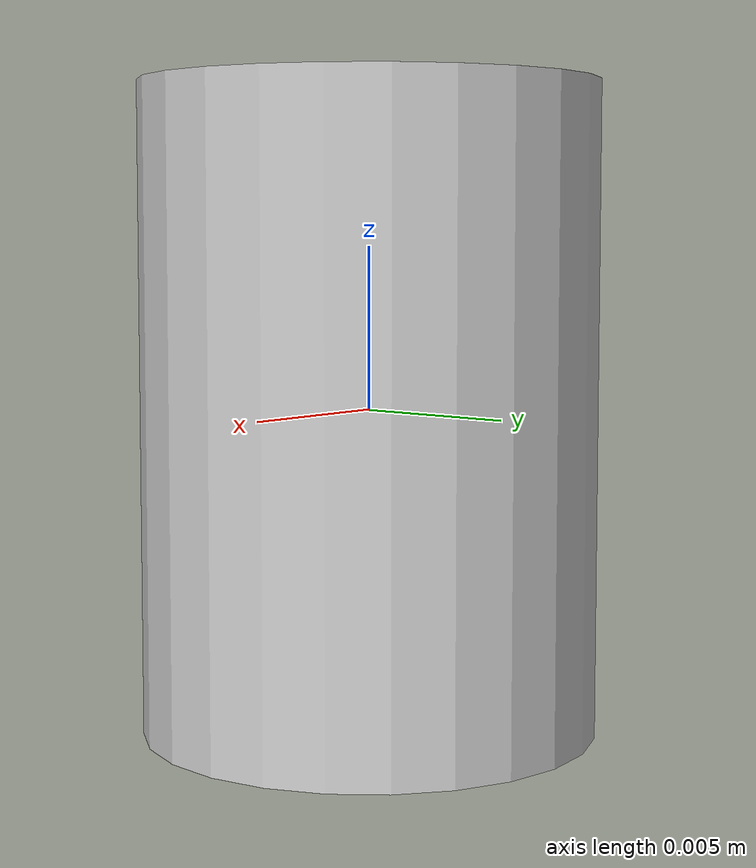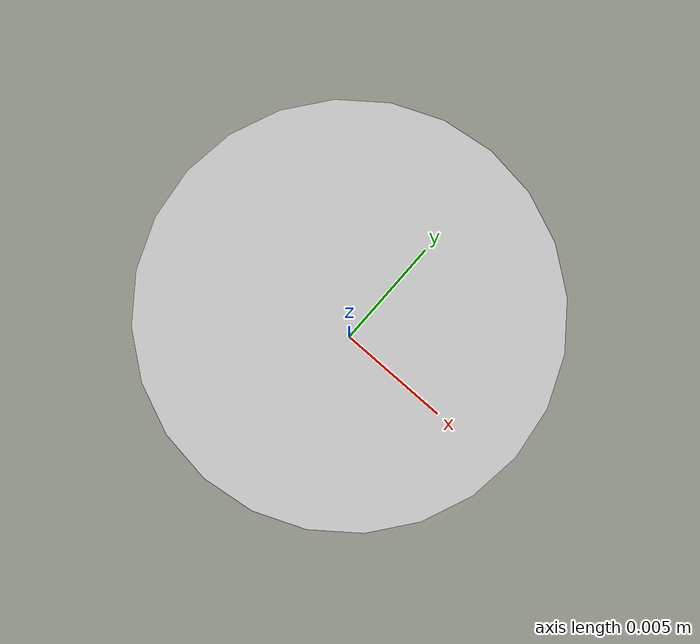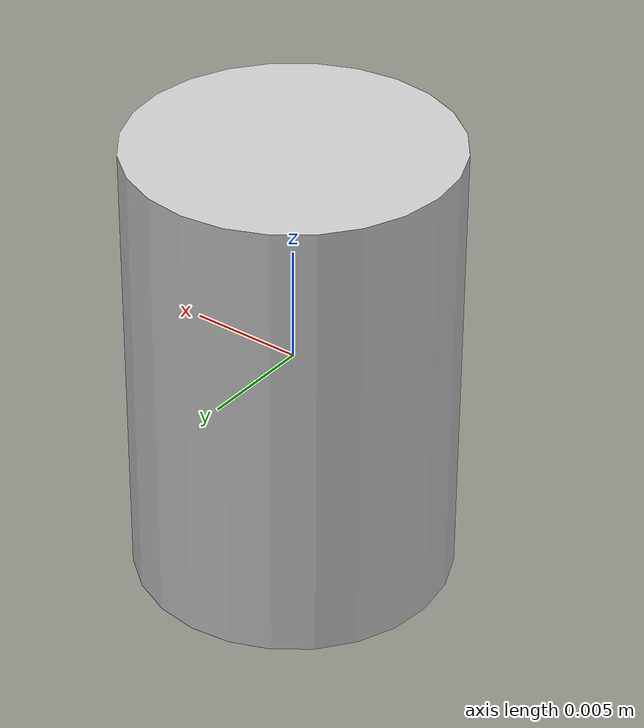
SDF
<?xml version="1.0"?>
<sdf version='1.6'>
<model name='USS'>
  <allow_auto_disable>1</allow_auto_disable>
  <link name='link_sonar'>
    <self_collide>0</self_collide>
    <enable_wind>0</enable_wind>
    <kinematic>0</kinematic>

    <inertial>
      <mass>0.020</mass>
      <inertia>
        <ixx>0.0</ixx>
        <ixy>0</ixy>
        <ixz>0</ixz>
        <iyy>0.0</iyy>
        <iyz>0</iyz>
        <izz>0.0</izz>
      </inertia>
    </inertial>

    <visual name='visual_sonar'>
      <geometry>
        <cylinder>
          <radius>0.007</radius>
          <length>0.02</length>
        </cylinder>
      </geometry>
      <material>
        <lighting>1</lighting>
        <ambient>0.89 0.89 0.89 1</ambient>
        <diffuse>0.8 0.8 0.8 1</diffuse>
        <specular>0.2 0.2 0.2 1</specular>
        <emissive>0.1 0.1 0.1 1</emissive>
      </material>
      <transparency>0</transparency>
      <cast_shadows>0</cast_shadows>
    </visual>

    <sensor name="sonar" type="sonar">
      <sonar>
        <min>0.02</min>
        <max>1.50</max>
        <radius>0.2</radius>
      </sonar>
      <always_on>1</always_on>
      <update_rate>20</update_rate>
      <visualize>1</visualize>
    </sensor>
  </link>
</model>
</sdf>
